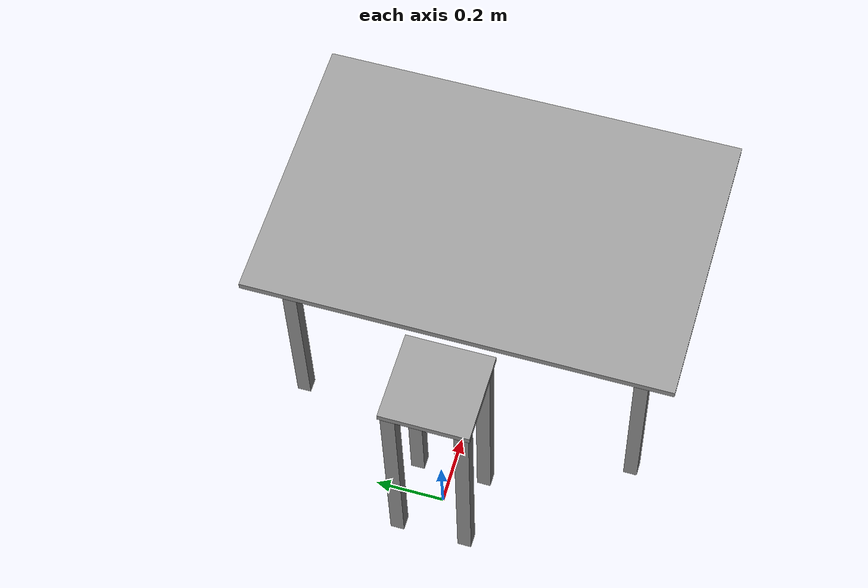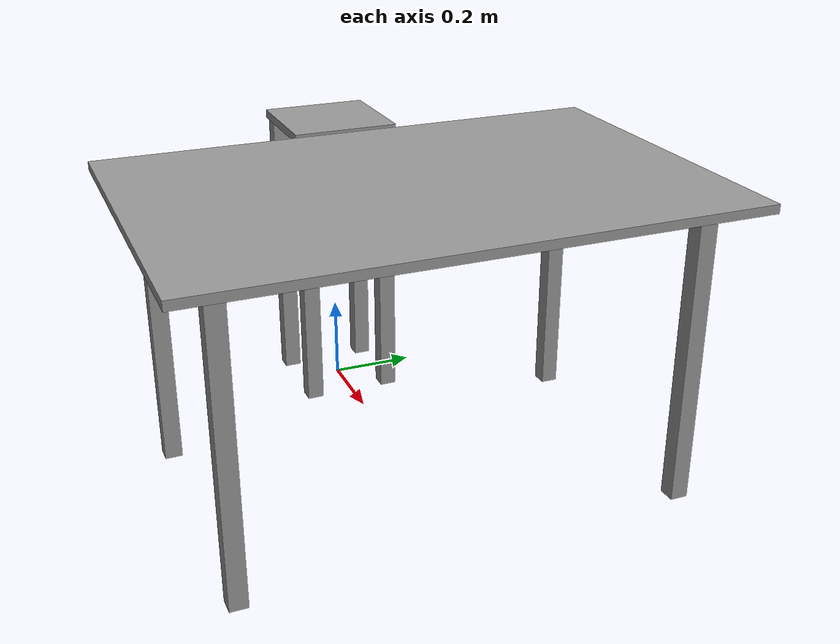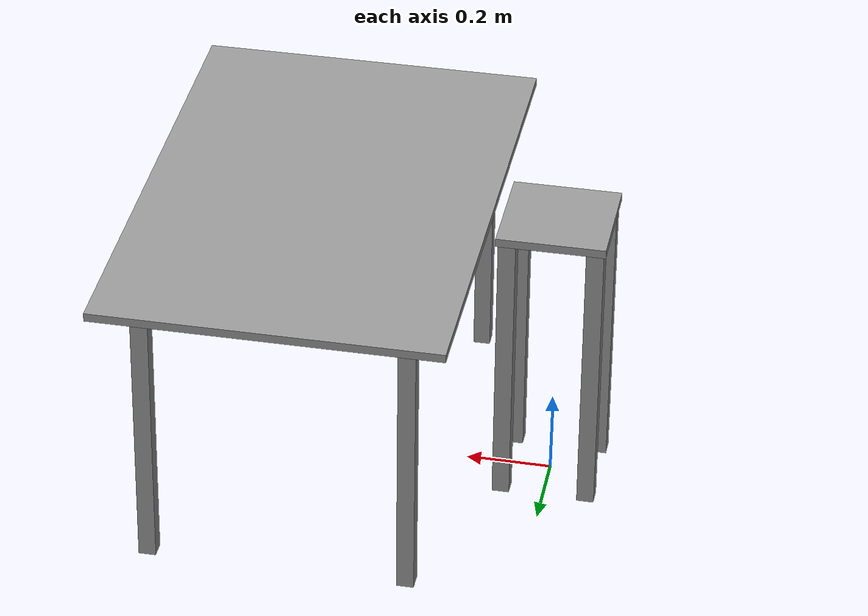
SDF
<sdf version="1.6">
 <world name="ur3_cubes">
  <gravity>0 0 -9.81</gravity>
  <physics name="default_physics" default="0" type="ode">
   <max_step_size>0.001</max_step_size>
   <real_time_factor>1</real_time_factor>
   <real_time_update_rate>1000</real_time_update_rate>
  </physics>
  <plugin name="ros_link_attacher_plugin" filename="libgazebo_ros_link_attacher.so"/>
  <scene><ambient>0.6 0.6 0.6 1</ambient><background>0.9 0.9 0.95 1</background><shadows>1</shadows></scene>
  <include><uri>model://sun</uri></include>
  <model name="robot_base"><include><uri>model://small_base</uri></include></model>
  <model name="work_table">
   <include><uri>model://large_base</uri><pose>0.55 0 0 0 0 1.5707</pose></include>
  </model>
 </world>
</sdf>

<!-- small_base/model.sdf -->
<sdf version="1.6">
  <model name="ur_base">
    <static>true</static>

    <link name="top_plate">
      <pose>0 0 0.69 0 0 0</pose>
      <collision name="top_plate_collision">
        <geometry>
          <box>
            <size>0.25 0.25 0.02</size>
          </box>
        </geometry>
        <surface>
          <contact>
            <collide_bitmask>0x01</collide_bitmask>
          </contact>
        </surface>
      </collision>
      <visual name="top_plate_visual">
        <geometry>
          <box>
            <size>0.25 0.25 0.02</size>
          </box>
        </geometry>
        <material>
          <script>
            <uri>model://media/materials/scripts/gazebo.material</uri>
            <name>Gazebo/Grey</name>
          </script>
        </material>
      </visual>
    </link>
    <link name="leg1">
      <pose>0.10 0.10 0.34 0 0 0</pose>
      <visual name="leg1_visual">
        <geometry>
          <box>
            <size>0.04 0.04 0.68</size>
          </box>
        </geometry>
        <material>
          <script>
            <uri>model://media/materials/scripts/gazebo.material</uri>
            <name>Gazebo/Grey</name>
          </script>
        </material>
      </visual>
    </link>
    <link name="leg2">
      <pose>-0.10 0.10 0.34 0 0 0</pose>
      <visual name="leg2_visual">
        <geometry>
          <box>
            <size>0.04 0.04 0.68</size>
          </box>
        </geometry>
        <material>
          <script>
            <uri>model://media/materials/scripts/gazebo.material</uri>
            <name>Gazebo/Grey</name>
          </script>
        </material>
      </visual>
    </link>
    <link name="leg3">
      <pose>0.10 -0.10 0.34 0 0 0</pose>
      <visual name="leg3_visual">
        <geometry>
          <box>
            <size>0.04 0.04 0.68</size>
          </box>
        </geometry>
        <material>
          <script>
            <uri>model://media/materials/scripts/gazebo.material</uri>
            <name>Gazebo/Grey</name>
          </script>
        </material>
      </visual>
    </link>
    <link name="leg4">
      <pose>-0.10 -0.10 0.34 0 0 0</pose>
      <visual name="leg4_visual">
        <geometry>
          <box>
            <size>0.04 0.04 0.68</size>
          </box>
        </geometry>
        <material>
          <script>
            <uri>model://media/materials/scripts/gazebo.material</uri>
            <name>Gazebo/Grey</name>
          </script>
        </material>
      </visual>
    </link>
  </model>
</sdf>

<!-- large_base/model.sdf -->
<sdf version="1.6">
  <model name="ur_base">
    <static>true</static>

    <link name="top_plate">
      <pose>0 0 0.69 0 0 0</pose>
      <collision name="top_plate_collision">
        <geometry>
          <box>
            <size>1.2 0.8 0.02</size>
          </box>
        </geometry>
        <surface>
          <friction>
            <ode>
              <mu>1</mu>
              <mu2>1</mu2>
              <fdir1>0 0 0</fdir1>
              <slip1>0</slip1>
              <slip2>0</slip2>
            </ode>
            <torsional>
              <coefficient>1</coefficient>
              <patch_radius>0</patch_radius>
              <surface_radius>0</surface_radius>
              <use_patch_radius>1</use_patch_radius>
              <ode>
                <slip>0</slip>
              </ode>
            </torsional>
          </friction>
          <bounce>
            <restitution_coefficient>0</restitution_coefficient>
            <threshold>1e+06</threshold>
          </bounce>
          <contact>
            <collide_without_contact>0</collide_without_contact>
            <collide_without_contact_bitmask>1</collide_without_contact_bitmask>
            <collide_bitmask>0x01</collide_bitmask>
            <ode>
              <soft_cfm>0</soft_cfm>
              <soft_erp>0.2</soft_erp>
              <kp>1e+13</kp>
              <kd>1</kd>
              <max_vel>0.01</max_vel>
              <min_depth>0</min_depth>
            </ode>
          </contact>
        </surface>
      </collision>
      <visual name="top_plate_visual">
        <geometry>
          <box>
            <size>1.2 0.8 0.02</size>
          </box>
        </geometry>
        <material>
          <script>
            <uri>model://media/materials/scripts/gazebo.material</uri>
            <name>Gazebo/Grey</name>
          </script>
        </material>
      </visual>
    </link>
    <link name="leg1">
      <pose>0.5 0.3 0.34 0 0 0</pose>
      <visual name="leg1_visual">
        <geometry>
          <box>
            <size>0.04 0.04 0.68</size>
          </box>
        </geometry>
        <material>
          <script>
            <uri>model://media/materials/scripts/gazebo.material</uri>
            <name>Gazebo/Grey</name>
          </script>
        </material>
      </visual>
    </link>
    <link name="leg2">
      <pose>-0.5 0.3 0.34 0 0 0</pose>
      <visual name="leg2_visual">
        <geometry>
          <box>
            <size>0.04 0.04 0.68</size>
          </box>
        </geometry>
        <material>
          <script>
            <uri>model://media/materials/scripts/gazebo.material</uri>
            <name>Gazebo/Grey</name>
          </script>
        </material>
      </visual>
    </link>
    <link name="leg3">
      <pose>0.5 -0.3 0.34 0 0 0</pose>
      <visual name="leg3_visual">
        <geometry>
          <box>
            <size>0.04 0.04 0.68</size>
          </box>
        </geometry>
        <material>
          <script>
            <uri>model://media/materials/scripts/gazebo.material</uri>
            <name>Gazebo/Grey</name>
          </script>
        </material>
      </visual>
    </link>
    <link name="leg4">
      <pose>-0.5 -0.3 0.34 0 0 0</pose>
      <visual name="leg4_visual">
        <geometry>
          <box>
            <size>0.04 0.04 0.68</size>
          </box>
        </geometry>
        <material>
          <script>
            <uri>model://media/materials/scripts/gazebo.material</uri>
            <name>Gazebo/Grey</name>
          </script>
        </material>
      </visual>
    </link>
  </model>
</sdf>
